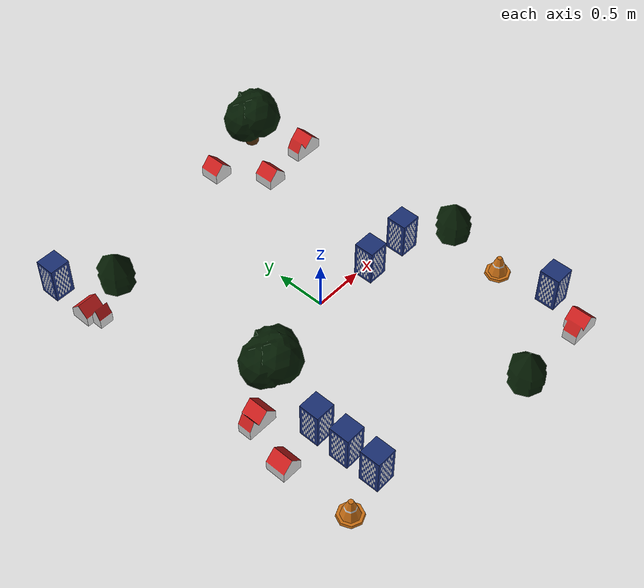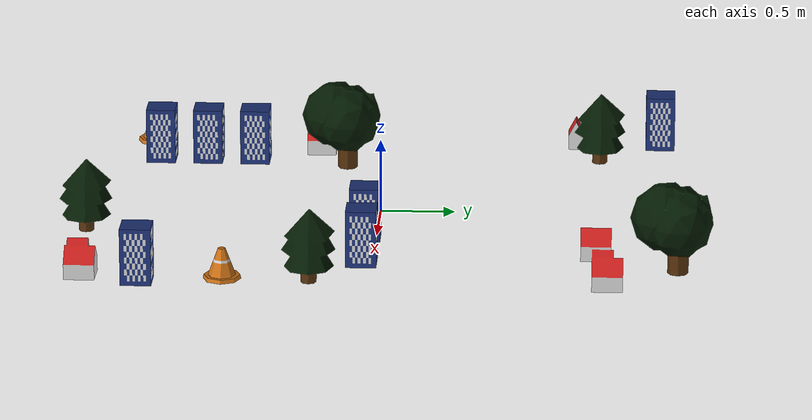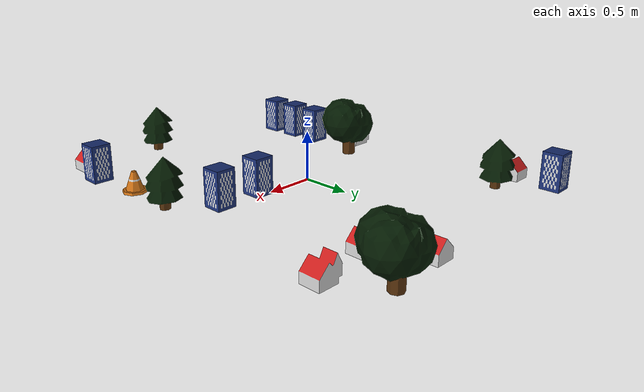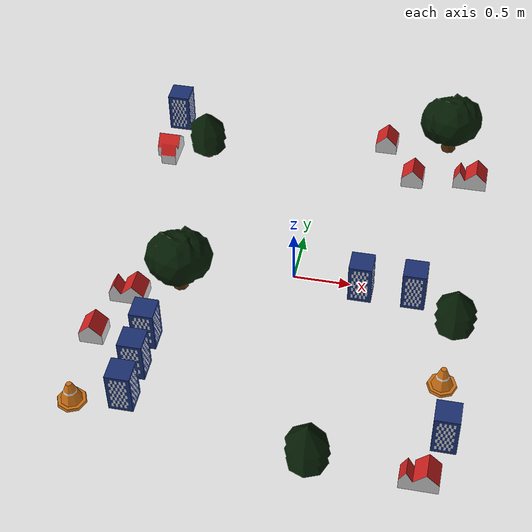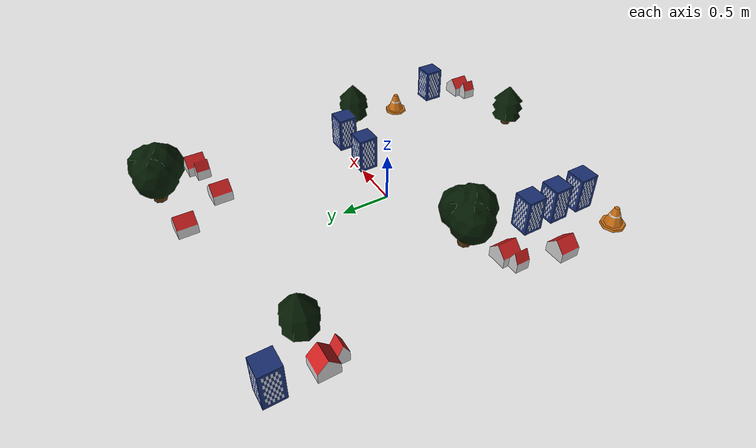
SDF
<?xml version="1.0" ?>
<sdf version="1.8">
  <model name="DecoAll">
    <static>true</static>
    <link name="DecoAll">
      <visual name="visual">
        <geometry>
          <mesh>
            <uri>model://YahboomTrack/DecoAll/meshes/DecoAll.dae</uri>
            <scale>2.0 2.0 2.0</scale>
          </mesh>
        </geometry>
      </visual>
      <collision name="visual">
        <geometry>
          <mesh>
            <uri>model://YahboomTrack/DecoAll/meshes/DecoAll.dae</uri>
            <scale>2.0 2.0 2.0</scale>
          </mesh>
        </geometry>
      </collision>
    </link>
  </model>
</sdf>
